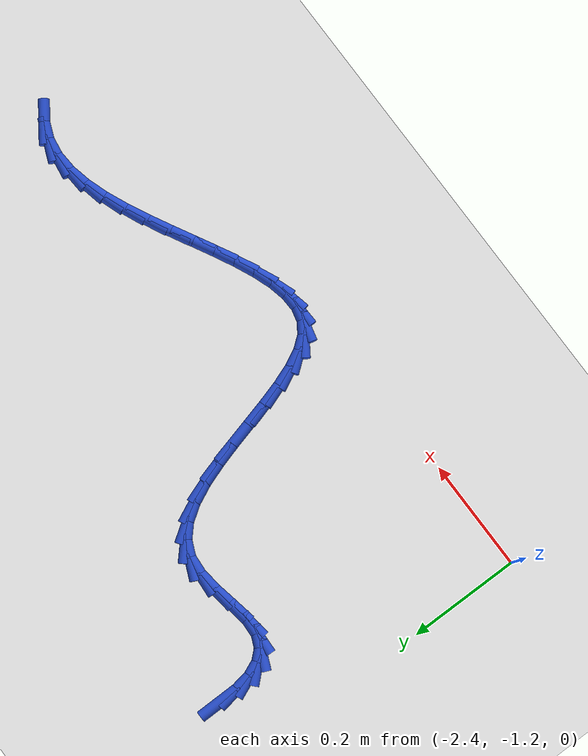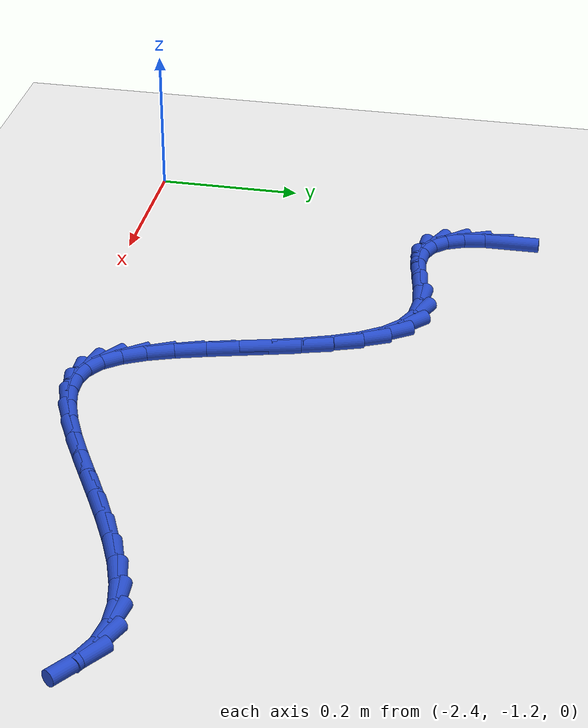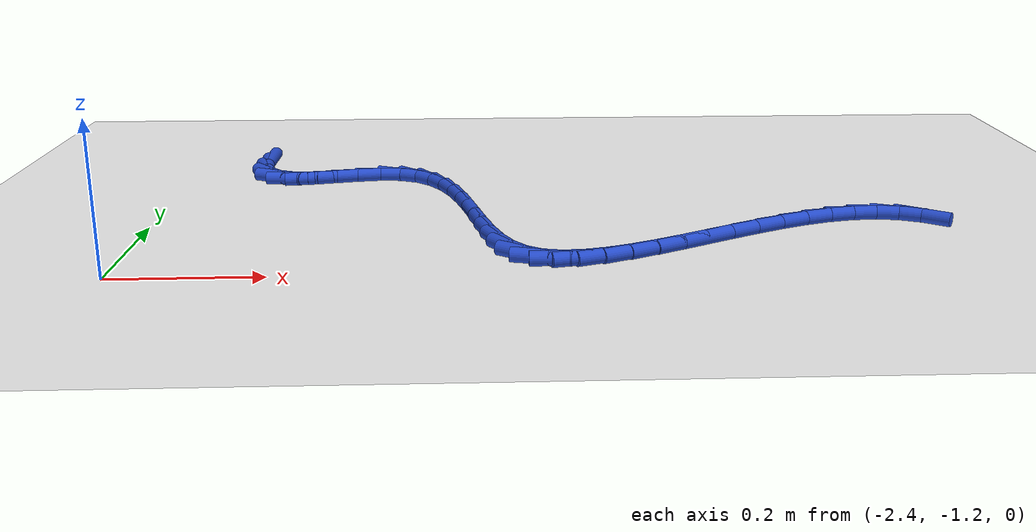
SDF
<sdf version="1.6">
 <world name="default">
  <model name="ground_plane">
   <static>1</static>
   <link name="link">
    <collision name="collision">
     <geometry><plane><normal>0 0 1</normal><size>100 100</size></plane></geometry>
     <surface><friction><ode><mu>100</mu><mu2>50</mu2></ode></friction></surface>
    </collision>
    <visual name="visual">
     <cast_shadows>0</cast_shadows>
     <geometry><plane><normal>0 0 1</normal><size>100 100</size></plane></geometry>
     <material>
      <script><uri>file://media/materials/scripts/gazebo.material</uri><name>Gazebo/WhiteGlow</name></script>
     </material>
    </visual>
   </link>
  </model>
  <model name="line">
   <link name="link_139">
    <pose>-2.2937391117425423 -0.6720930886312734 0.01 0 1.57 -1.5606041028826312</pose>
    <collision name="collision">
     <geometry><cylinder><radius>0.01</radius><length>0.08</length></cylinder></geometry>
    </collision>
    <visual name="visual">
     <material>
      <script><name>Gazebo/Blue</name><uri>file://media/materials/scripts/gazebo.material</uri></script>
     </material>
     <geometry><cylinder><radius>0.01</radius><length>0.08</length></cylinder></geometry>
    </visual>
   </link>
   <link name="link_140">
    <pose>-2.29338195928739 -0.7071335362285569 0.01 0 1.57 -1.4018608879219892</pose>
    <collision name="collision">
     <geometry><cylinder><radius>0.01</radius><length>0.08</length></cylinder></geometry>
    </collision>
    <visual name="visual">
     <material>
      <script><name>Gazebo/Blue</name><uri>file://media/materials/scripts/gazebo.material</uri></script>
     </material>
     <geometry><cylinder><radius>0.01</radius><length>0.08</length></cylinder></geometry>
    </visual>
   </link>
   <link name="link_141">
    <pose>-2.288259714383943 -0.7371652675590821 0.01 0 1.57 -1.1654327004824643</pose>
    <collision name="collision">
     <geometry><cylinder><radius>0.01</radius><length>0.08</length></cylinder></geometry>
    </collision>
    <visual name="visual">
     <material>
      <script><name>Gazebo/Blue</name><uri>file://media/materials/scripts/gazebo.material</uri></script>
     </material>
     <geometry><cylinder><radius>0.01</radius><length>0.08</length></cylinder></geometry>
    </visual>
   </link>
   <link name="link_142">
    <pose>-2.2779054212785876 -0.7612938346438782 0.01 0 1.57 -0.823650767016249</pose>
    <collision name="collision">
     <geometry><cylinder><radius>0.01</radius><length>0.08</length></cylinder></geometry>
    </collision>
    <visual name="visual">
     <material>
      <script><name>Gazebo/Blue</name><uri>file://media/materials/scripts/gazebo.material</uri></script>
     </material>
     <geometry><cylinder><radius>0.01</radius><length>0.08</length></cylinder></geometry>
    </visual>
   </link>
   <link name="link_143">
    <pose>-2.2618521242177048 -0.7786247895039723 0.01 0 1.57 -0.40930751114139785</pose>
    <collision name="collision">
     <geometry><cylinder><radius>0.01</radius><length>0.08</length></cylinder></geometry>
    </collision>
    <visual name="visual">
     <material>
      <script><name>Gazebo/Blue</name><uri>file://media/materials/scripts/gazebo.material</uri></script>
     </material>
     <geometry><cylinder><radius>0.01</radius><length>0.08</length></cylinder></geometry>
    </visual>
   </link>
   <link name="link_144">
    <pose>-2.2396328674476775 -0.788263684160392 0.01 0 1.57 -0.041677084585838235</pose>
    <collision name="collision">
     <geometry><cylinder><radius>0.01</radius><length>0.08</length></cylinder></geometry>
    </collision>
    <visual name="visual">
     <material>
      <script><name>Gazebo/Blue</name><uri>file://media/materials/scripts/gazebo.material</uri></script>
     </material>
     <geometry><cylinder><radius>0.01</radius><length>0.08</length></cylinder></geometry>
    </visual>
   </link>
   <link name="link_145">
    <pose>-2.2108711290989147 -0.7894630840871317 0.01 0 1.57 0.15292961134158875</pose>
    <collision name="collision">
     <geometry><cylinder><radius>0.01</radius><length>0.08</length></cylinder></geometry>
    </collision>
    <visual name="visual">
     <material>
      <script><name>Gazebo/Blue</name><uri>file://media/materials/scripts/gazebo.material</uri></script>
     </material>
     <geometry><cylinder><radius>0.01</radius><length>0.08</length></cylinder></geometry>
    </visual>
   </link>
   <link name="link_146">
    <pose>-2.1768811282392035 -0.7842241004604471 0.01 0 1.57 0.19628990115563738</pose>
    <collision name="collision">
     <geometry><cylinder><radius>0.01</radius><length>0.08</length></cylinder></geometry>
    </collision>
    <visual name="visual">
     <material>
      <script><name>Gazebo/Blue</name><uri>file://media/materials/scripts/gazebo.material</uri></script>
     </material>
     <geometry><cylinder><radius>0.01</radius><length>0.08</length></cylinder></geometry>
    </visual>
   </link>
   <link name="link_147">
    <pose>-2.140476263812007 -0.7769849797462802 0.01 0 1.57 0.13043704164393477</pose>
    <collision name="collision">
     <geometry><cylinder><radius>0.01</radius><length>0.08</length></cylinder></geometry>
    </collision>
    <visual name="visual">
     <material>
      <script><name>Gazebo/Blue</name><uri>file://media/materials/scripts/gazebo.material</uri></script>
     </material>
     <geometry><cylinder><radius>0.01</radius><length>0.08</length></cylinder></geometry>
    </visual>
   </link>
   <link name="link_148">
    <pose>-2.1045218826862553 -0.7722684173312341 0.01 0 1.57 -0.07090873996758883</pose>
    <collision name="collision">
     <geometry><cylinder><radius>0.01</radius><length>0.08</length></cylinder></geometry>
    </collision>
    <visual name="visual">
     <material>
      <script><name>Gazebo/Blue</name><uri>file://media/materials/scripts/gazebo.material</uri></script>
     </material>
     <geometry><cylinder><radius>0.01</radius><length>0.08</length></cylinder></geometry>
    </visual>
   </link>
   <link name="link_149">
    <pose>-2.071877375763791 -0.7745870856134603 0.01 0 1.57 -0.4138045076317078</pose>
    <collision name="collision">
     <geometry><cylinder><radius>0.01</radius><length>0.08</length></cylinder></geometry>
    </collision>
    <visual name="visual">
     <material>
      <script><name>Gazebo/Blue</name><uri>file://media/materials/scripts/gazebo.material</uri></script>
     </material>
     <geometry><cylinder><radius>0.01</radius><length>0.08</length></cylinder></geometry>
    </visual>
   </link>
   <link name="link_150">
    <pose>-2.044346694338366 -0.7866775123529005 0.01 0 1.57 -0.7378373912547698</pose>
    <collision name="collision">
     <geometry><cylinder><radius>0.01</radius><length>0.08</length></cylinder></geometry>
    </collision>
    <visual name="visual">
     <material>
      <script><name>Gazebo/Blue</name><uri>file://media/materials/scripts/gazebo.material</uri></script>
     </material>
     <geometry><cylinder><radius>0.01</radius><length>0.08</length></cylinder></geometry>
    </visual>
   </link>
   <link name="link_151">
    <pose>-2.0214734064278894 -0.8074723433963117 0.01 0 1.57 -0.9744963126836538</pose>
    <collision name="collision">
     <geometry><cylinder><radius>0.01</radius><length>0.08</length></cylinder></geometry>
    </collision>
    <visual name="visual">
     <material>
      <script><name>Gazebo/Blue</name><uri>file://media/materials/scripts/gazebo.material</uri></script>
     </material>
     <geometry><cylinder><radius>0.01</radius><length>0.08</length></cylinder></geometry>
    </visual>
   </link>
   <link name="link_152">
    <pose>-2.002509356402214 -0.83541329797621 0.01 0 1.57 -1.1303505486252534</pose>
    <collision name="collision">
     <geometry><cylinder><radius>0.01</radius><length>0.08</length></cylinder></geometry>
    </collision>
    <visual name="visual">
     <material>
      <script><name>Gazebo/Blue</name><uri>file://media/materials/scripts/gazebo.material</uri></script>
     </material>
     <geometry><cylinder><radius>0.01</radius><length>0.08</length></cylinder></geometry>
    </visual>
   </link>
   <link name="link_153">
    <pose>-1.9867063886311926 -0.8689420953251105 0.01 0 1.57 -1.228331156572542</pose>
    <collision name="collision">
     <geometry><cylinder><radius>0.01</radius><length>0.08</length></cylinder></geometry>
    </collision>
    <visual name="visual">
     <material>
      <script><name>Gazebo/Blue</name><uri>file://media/materials/scripts/gazebo.material</uri></script>
     </material>
     <geometry><cylinder><radius>0.01</radius><length>0.08</length></cylinder></geometry>
    </visual>
   </link>
   <link name="link_154">
    <pose>-1.9733163474846764 -0.9065004546755284 0.01 0 1.57 -1.2858524165460123</pose>
    <collision name="collision">
     <geometry><cylinder><radius>0.01</radius><length>0.08</length></cylinder></geometry>
    </collision>
    <visual name="visual">
     <material>
      <script><name>Gazebo/Blue</name><uri>file://media/materials/scripts/gazebo.material</uri></script>
     </material>
     <geometry><cylinder><radius>0.01</radius><length>0.08</length></cylinder></geometry>
    </visual>
   </link>
   <link name="link_155">
    <pose>-1.9615910773325171 -0.9465300952599804 0.01 0 1.57 -1.3126898329556234</pose>
    <collision name="collision">
     <geometry><cylinder><radius>0.01</radius><length>0.08</length></cylinder></geometry>
    </collision>
    <visual name="visual">
     <material>
      <script><name>Gazebo/Blue</name><uri>file://media/materials/scripts/gazebo.material</uri></script>
     </material>
     <geometry><cylinder><radius>0.01</radius><length>0.08</length></cylinder></geometry>
    </visual>
   </link>
   <link name="link_156">
    <pose>-1.9507824225445676 -0.9874727363109795 0.01 0 1.57 -1.3126459629459377</pose>
    <collision name="collision">
     <geometry><cylinder><radius>0.01</radius><length>0.08</length></cylinder></geometry>
    </collision>
    <visual name="visual">
     <material>
      <script><name>Gazebo/Blue</name><uri>file://media/materials/scripts/gazebo.material</uri></script>
     </material>
     <geometry><cylinder><radius>0.01</radius><length>0.08</length></cylinder></geometry>
    </visual>
   </link>
   <link name="link_157">
    <pose>-1.9401422274906799 -1.0277700970610422 0.01 0 1.57 -1.2843624067427342</pose>
    <collision name="collision">
     <geometry><cylinder><radius>0.01</radius><length>0.08</length></cylinder></geometry>
    </collision>
    <visual name="visual">
     <material>
      <script><name>Gazebo/Blue</name><uri>file://media/materials/scripts/gazebo.material</uri></script>
     </material>
     <geometry><cylinder><radius>0.01</radius><length>0.08</length></cylinder></geometry>
    </visual>
   </link>
   <link name="link_158">
    <pose>-1.9289223365407056 -1.065863896742684 0.01 0 1.57 -1.2203954355123126</pose>
    <collision name="collision">
     <geometry><cylinder><radius>0.01</radius><length>0.08</length></cylinder></geometry>
    </collision>
    <visual name="visual">
     <material>
      <script><name>Gazebo/Blue</name><uri>file://media/materials/scripts/gazebo.material</uri></script>
     </material>
     <geometry><cylinder><radius>0.01</radius><length>0.08</length></cylinder></geometry>
    </visual>
   </link>
   <link name="link_159">
    <pose>-1.9163745940644978 -1.1001958545884205 0.01 0 1.57 -1.1039047870968248</pose>
    <collision name="collision">
     <geometry><cylinder><radius>0.01</radius><length>0.08</length></cylinder></geometry>
    </collision>
    <visual name="visual">
     <material>
      <script><name>Gazebo/Blue</name><uri>file://media/materials/scripts/gazebo.material</uri></script>
     </material>
     <geometry><cylinder><radius>0.01</radius><length>0.08</length></cylinder></geometry>
    </visual>
   </link>
   <link name="link_160">
    <pose>-1.9017508444319078 -1.1292076898307668 0.01 0 1.57 -0.9032267895653013</pose>
    <collision name="collision">
     <geometry><cylinder><radius>0.01</radius><length>0.08</length></cylinder></geometry>
    </collision>
    <visual name="visual">
     <material>
      <script><name>Gazebo/Blue</name><uri>file://media/materials/scripts/gazebo.material</uri></script>
     </material>
     <geometry><cylinder><radius>0.01</radius><length>0.08</length></cylinder></geometry>
    </visual>
   </link>
   <link name="link_161">
    <pose>-1.8843029320127875 -1.151341121702238 0.01 0 1.57 -0.5857900315097798</pose>
    <collision name="collision">
     <geometry><cylinder><radius>0.01</radius><length>0.08</length></cylinder></geometry>
    </collision>
    <visual name="visual">
     <material>
      <script><name>Gazebo/Blue</name><uri>file://media/materials/scripts/gazebo.material</uri></script>
     </material>
     <geometry><cylinder><radius>0.01</radius><length>0.08</length></cylinder></geometry>
    </visual>
   </link>
   <link name="link_162">
    <pose>-1.8633671346888938 -1.1652315088612475 0.01 0 1.57 -0.23722284201294447</pose>
    <collision name="collision">
     <geometry><cylinder><radius>0.01</radius><length>0.08</length></cylinder></geometry>
    </collision>
    <visual name="visual">
     <material>
      <script><name>Gazebo/Blue</name><uri>file://media/materials/scripts/gazebo.material</uri></script>
     </material>
     <geometry><cylinder><radius>0.01</radius><length>0.08</length></cylinder></geometry>
    </visual>
   </link>
   <link name="link_163">
    <pose>-1.8389829617797995 -1.1711269976949177 0.01 0 1.57 0.03826465728616572</pose>
    <collision name="collision">
     <geometry><cylinder><radius>0.01</radius><length>0.08</length></cylinder></geometry>
    </collision>
    <visual name="visual">
     <material>
      <script><name>Gazebo/Blue</name><uri>file://media/materials/scripts/gazebo.material</uri></script>
     </material>
     <geometry><cylinder><radius>0.01</radius><length>0.08</length></cylinder></geometry>
    </visual>
   </link>
   <link name="link_164">
    <pose>-1.8115390195105854 -1.1700763518197186 0.01 0 1.57 0.2265838494352755</pose>
    <collision name="collision">
     <geometry><cylinder><radius>0.01</radius><length>0.08</length></cylinder></geometry>
    </collision>
    <visual name="visual">
     <material>
      <script><name>Gazebo/Blue</name><uri>file://media/materials/scripts/gazebo.material</uri></script>
     </material>
     <geometry><cylinder><radius>0.01</radius><length>0.08</length></cylinder></geometry>
    </visual>
   </link>
   <link name="link_165">
    <pose>-1.7814264331586525 -1.1631341120350684 0.01 0 1.57 0.3488002573490965</pose>
    <collision name="collision">
     <geometry><cylinder><radius>0.01</radius><length>0.08</length></cylinder></geometry>
    </collision>
    <visual name="visual">
     <material>
      <script><name>Gazebo/Blue</name><uri>file://media/materials/scripts/gazebo.material</uri></script>
     </material>
     <geometry><cylinder><radius>0.01</radius><length>0.08</length></cylinder></geometry>
    </visual>
   </link>
   <link name="link_166">
    <pose>-1.7490363280014032 -1.1513548191403855 0.01 0 1.57 0.42618199257450295</pose>
    <collision name="collision">
     <geometry><cylinder><radius>0.01</radius><length>0.08</length></cylinder></geometry>
    </collision>
    <visual name="visual">
     <material>
      <script><name>Gazebo/Blue</name><uri>file://media/materials/scripts/gazebo.material</uri></script>
     </material>
     <geometry><cylinder><radius>0.01</radius><length>0.08</length></cylinder></geometry>
    </visual>
   </link>
   <link name="link_167">
    <pose>-1.7147598293162378 -1.135793013935088 0.01 0 1.57 0.4726394264158606</pose>
    <collision name="collision">
     <geometry><cylinder><radius>0.01</radius><length>0.08</length></cylinder></geometry>
    </collision>
    <visual name="visual">
     <material>
      <script><name>Gazebo/Blue</name><uri>file://media/materials/scripts/gazebo.material</uri></script>
     </material>
     <geometry><cylinder><radius>0.01</radius><length>0.08</length></cylinder></geometry>
    </visual>
   </link>
   <link name="link_168">
    <pose>-1.678988062380559 -1.1175032372185947 0.01 0 1.57 0.49618698209285844</pose>
    <collision name="collision">
     <geometry><cylinder><radius>0.01</radius><length>0.08</length></cylinder></geometry>
    </collision>
    <visual name="visual">
     <material>
      <script><name>Gazebo/Blue</name><uri>file://media/materials/scripts/gazebo.material</uri></script>
     </material>
     <geometry><cylinder><radius>0.01</radius><length>0.08</length></cylinder></geometry>
    </visual>
   </link>
   <link name="link_169">
    <pose>-1.6421121524717686 -1.0975400297903235 0.01 0 1.57 0.5009659985195614</pose>
    <collision name="collision">
     <geometry><cylinder><radius>0.01</radius><length>0.08</length></cylinder></geometry>
    </collision>
    <visual name="visual">
     <material>
      <script><name>Gazebo/Blue</name><uri>file://media/materials/scripts/gazebo.material</uri></script>
     </material>
     <geometry><cylinder><radius>0.01</radius><length>0.08</length></cylinder></geometry>
    </visual>
   </link>
   <link name="link_170">
    <pose>-1.6045232248672663 -1.0769579324496925 0.01 0 1.57 0.48846402399598615</pose>
    <collision name="collision">
     <geometry><cylinder><radius>0.01</radius><length>0.08</length></cylinder></geometry>
    </collision>
    <visual name="visual">
     <material>
      <script><name>Gazebo/Blue</name><uri>file://media/materials/scripts/gazebo.material</uri></script>
     </material>
     <geometry><cylinder><radius>0.01</radius><length>0.08</length></cylinder></geometry>
    </visual>
   </link>
   <link name="link_171">
    <pose>-1.5666124048444563 -1.0568114859961208 0.01 0 1.57 0.458039433418135</pose>
    <collision name="collision">
     <geometry><cylinder><radius>0.01</radius><length>0.08</length></cylinder></geometry>
    </collision>
    <visual name="visual">
     <material>
      <script><name>Gazebo/Blue</name><uri>file://media/materials/scripts/gazebo.material</uri></script>
     </material>
     <geometry><cylinder><radius>0.01</radius><length>0.08</length></cylinder></geometry>
    </visual>
   </link>
   <link name="link_172">
    <pose>-1.5287708176807384 -1.0381552312290259 0.01 0 1.57 0.406946500726413</pose>
    <collision name="collision">
     <geometry><cylinder><radius>0.01</radius><length>0.08</length></cylinder></geometry>
    </collision>
    <visual name="visual">
     <material>
      <script><name>Gazebo/Blue</name><uri>file://media/materials/scripts/gazebo.material</uri></script>
     </material>
     <geometry><cylinder><radius>0.01</radius><length>0.08</length></cylinder></geometry>
    </visual>
   </link>
   <link name="link_173">
    <pose>-1.4913895886535153 -1.022043708947827 0.01 0 1.57 0.3299976165618335</pose>
    <collision name="collision">
     <geometry><cylinder><radius>0.01</radius><length>0.08</length></cylinder></geometry>
    </collision>
    <visual name="visual">
     <material>
      <script><name>Gazebo/Blue</name><uri>file://media/materials/scripts/gazebo.material</uri></script>
     </material>
     <geometry><cylinder><radius>0.01</radius><length>0.08</length></cylinder></geometry>
    </visual>
   </link>
   <link name="link_174">
    <pose>-1.4548598430401876 -1.0095314599519412 0.01 0 1.57 0.21912391090374075</pose>
    <collision name="collision">
     <geometry><cylinder><radius>0.01</radius><length>0.08</length></cylinder></geometry>
    </collision>
    <visual name="visual">
     <material>
      <script><name>Gazebo/Blue</name><uri>file://media/materials/scripts/gazebo.material</uri></script>
     </material>
     <geometry><cylinder><radius>0.01</radius><length>0.08</length></cylinder></geometry>
    </visual>
   </link>
   <link name="link_175">
    <pose>-1.4195727061181576 -1.0016730250407877 0.01 0 1.57 0.06380221868730217</pose>
    <collision name="collision">
     <geometry><cylinder><radius>0.01</radius><length>0.08</length></cylinder></geometry>
    </collision>
    <visual name="visual">
     <material>
      <script><name>Gazebo/Blue</name><uri>file://media/materials/scripts/gazebo.material</uri></script>
     </material>
     <geometry><cylinder><radius>0.01</radius><length>0.08</length></cylinder></geometry>
    </visual>
   </link>
   <link name="link_176">
    <pose>-1.3859193031648267 -0.9995229450137845 0.01 0 1.57 -0.14482239566708643</pose>
    <collision name="collision">
     <geometry><cylinder><radius>0.01</radius><length>0.08</length></cylinder></geometry>
    </collision>
    <visual name="visual">
     <material>
      <script><name>Gazebo/Blue</name><uri>file://media/materials/scripts/gazebo.material</uri></script>
     </material>
     <geometry><cylinder><radius>0.01</radius><length>0.08</length></cylinder></geometry>
    </visual>
   </link>
   <link name="link_177">
    <pose>-1.3542907594575957 -1.0041357606703503 0.01 0 1.57 -0.39468699257447476</pose>
    <collision name="collision">
     <geometry><cylinder><radius>0.01</radius><length>0.08</length></cylinder></geometry>
    </collision>
    <visual name="visual">
     <material>
      <script><name>Gazebo/Blue</name><uri>file://media/materials/scripts/gazebo.material</uri></script>
     </material>
     <geometry><cylinder><radius>0.01</radius><length>0.08</length></cylinder></geometry>
    </visual>
   </link>
   <link name="link_178">
    <pose>-1.3250026622801152 -1.0163355555049378 0.01 0 1.57 -0.6111342931497002</pose>
    <collision name="collision">
     <geometry><cylinder><radius>0.01</radius><length>0.08</length></cylinder></geometry>
    </collision>
    <visual name="visual">
     <material>
      <script><name>Gazebo/Blue</name><uri>file://media/materials/scripts/gazebo.material</uri></script>
     </material>
     <geometry><cylinder><radius>0.01</radius><length>0.08</length></cylinder></geometry>
    </visual>
   </link>
  </model>
 </world>
</sdf>
